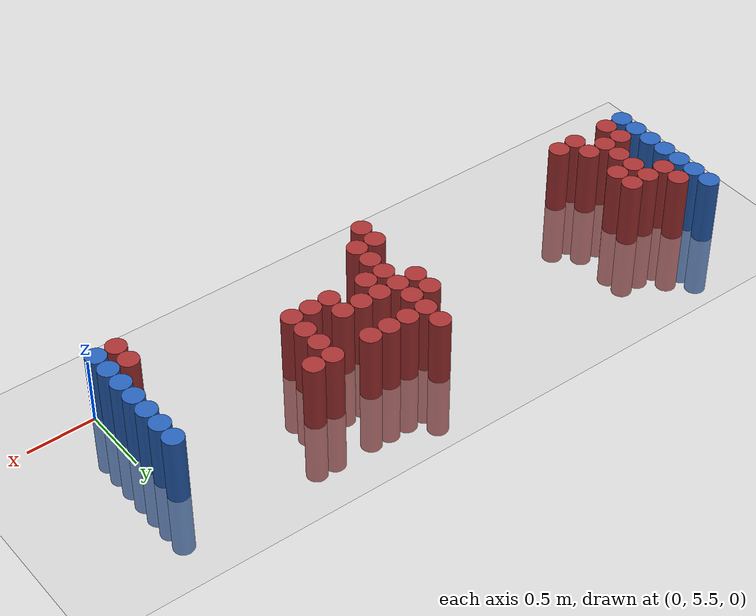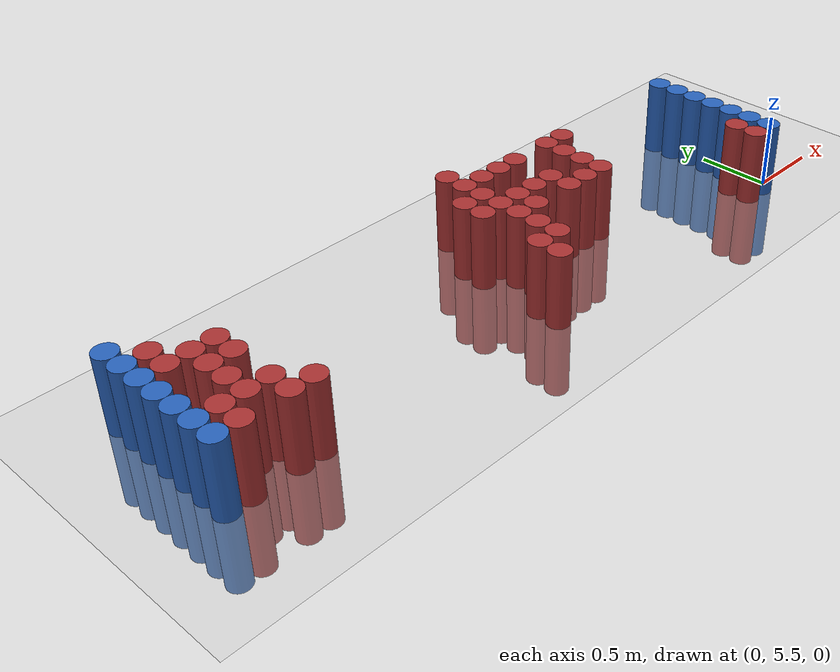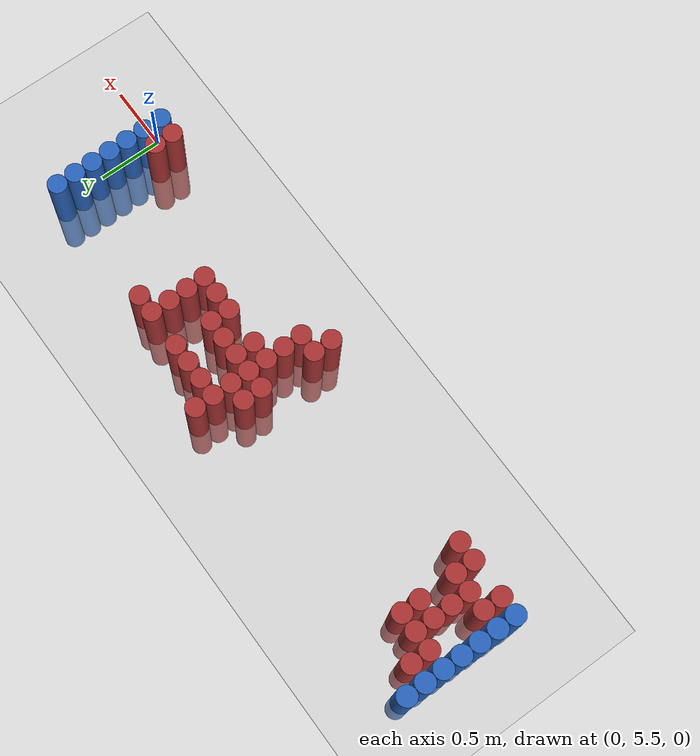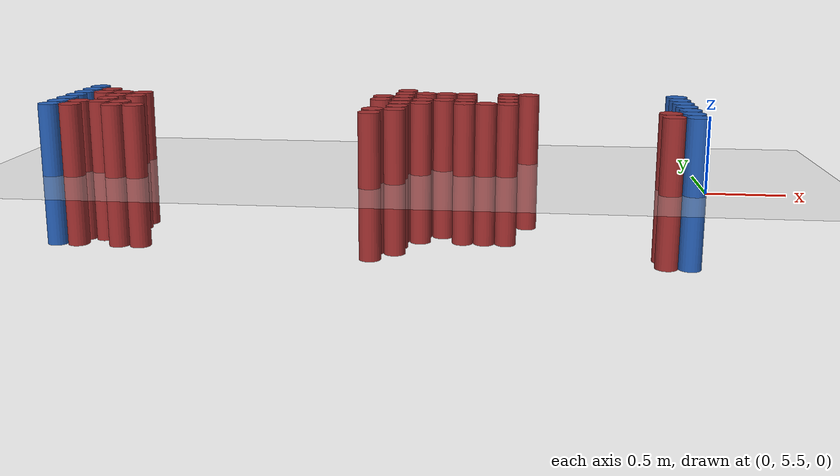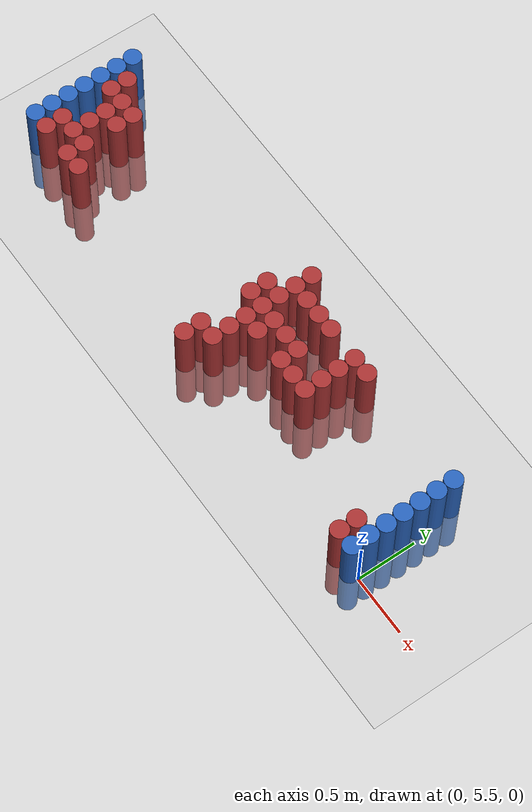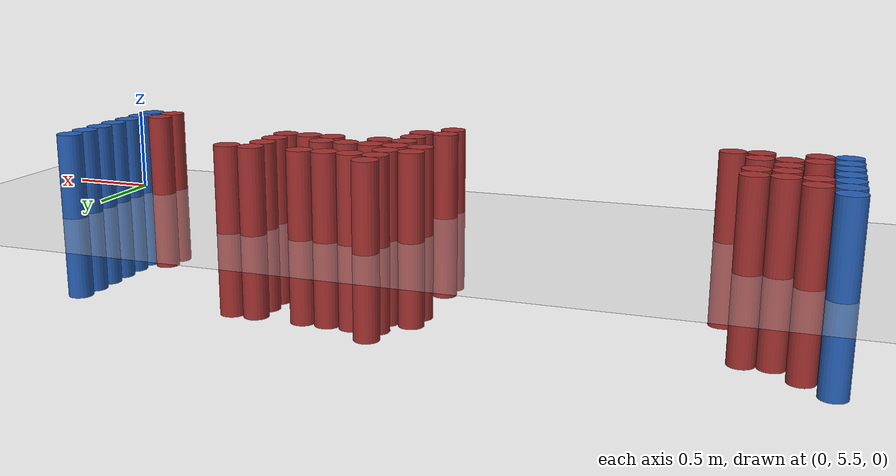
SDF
<sdf version="1.6">
 <world name="default">
  <model name="ground_plane">
   <static>1</static>
   <link name="link">
    <collision name="collision">
     <geometry><plane><normal>0 0 1</normal><size>100 100</size></plane></geometry>
     <surface><friction><ode><mu>100</mu><mu2>50</mu2></ode></friction></surface>
    </collision>
    <visual name="visual">
     <cast_shadows>0</cast_shadows>
     <geometry><plane><normal>0 0 1</normal><size>100 100</size></plane></geometry>
     <material>
      <script><uri>file://media/materials/scripts/gazebo.material</uri><name>Gazebo/Grey</name></script>
     </material>
    </visual>
   </link>
  </model>
  <model name="unit_cylinder_99">
   <static>1</static>
   <pose>-4.425000 5.625000 0.000000 0.000000 0.000000 0.000000</pose>
   <link name="link">
    <inertial>
     <mass>1</mass>
     <inertia><ixx>0.145833</ixx><ixy>0</ixy><ixz>0</ixz><iyy>0.145833</iyy><iyz>0</iyz><izz>0.125</izz></inertia>
    </inertial>
    <collision name="collision">
     <geometry><cylinder><radius>0.075000</radius><length>1</length></cylinder></geometry>
    </collision>
    <visual name="visual">
     <geometry><cylinder><radius>0.075000</radius><length>1</length></cylinder></geometry>
     <material>
      <ambient>0.152000 0.379000 0.720000 1</ambient>
      <diffuse>0.152000 0.379000 0.720000 1</diffuse>
     </material>
     <material>
      <script><name>Gazebo/Grey</name><uri>file://media/materials/scripts/gazebo.material</uri></script>
     </material>
    </visual>
   </link>
  </model>
  <model name="unit_cylinder_100">
   <static>1</static>
   <pose>-4.425000 5.775000 0.000000 0.000000 0.000000 0.000000</pose>
   <link name="link">
    <inertial>
     <mass>1</mass>
     <inertia><ixx>0.145833</ixx><ixy>0</ixy><ixz>0</ixz><iyy>0.145833</iyy><iyz>0</iyz><izz>0.125</izz></inertia>
    </inertial>
    <collision name="collision">
     <geometry><cylinder><radius>0.075000</radius><length>1</length></cylinder></geometry>
    </collision>
    <visual name="visual">
     <geometry><cylinder><radius>0.075000</radius><length>1</length></cylinder></geometry>
     <material>
      <ambient>0.152000 0.379000 0.720000 1</ambient>
      <diffuse>0.152000 0.379000 0.720000 1</diffuse>
     </material>
     <material>
      <script><name>Gazebo/Grey</name><uri>file://media/materials/scripts/gazebo.material</uri></script>
     </material>
    </visual>
   </link>
  </model>
  <model name="unit_cylinder_101">
   <static>1</static>
   <pose>-4.425000 5.925000 0.000000 0.000000 0.000000 0.000000</pose>
   <link name="link">
    <inertial>
     <mass>1</mass>
     <inertia><ixx>0.145833</ixx><ixy>0</ixy><ixz>0</ixz><iyy>0.145833</iyy><iyz>0</iyz><izz>0.125</izz></inertia>
    </inertial>
    <collision name="collision">
     <geometry><cylinder><radius>0.075000</radius><length>1</length></cylinder></geometry>
    </collision>
    <visual name="visual">
     <geometry><cylinder><radius>0.075000</radius><length>1</length></cylinder></geometry>
     <material>
      <ambient>0.152000 0.379000 0.720000 1</ambient>
      <diffuse>0.152000 0.379000 0.720000 1</diffuse>
     </material>
     <material>
      <script><name>Gazebo/Grey</name><uri>file://media/materials/scripts/gazebo.material</uri></script>
     </material>
    </visual>
   </link>
  </model>
  <model name="unit_cylinder_102">
   <static>1</static>
   <pose>-4.425000 6.075000 0.000000 0.000000 0.000000 0.000000</pose>
   <link name="link">
    <inertial>
     <mass>1</mass>
     <inertia><ixx>0.145833</ixx><ixy>0</ixy><ixz>0</ixz><iyy>0.145833</iyy><iyz>0</iyz><izz>0.125</izz></inertia>
    </inertial>
    <collision name="collision">
     <geometry><cylinder><radius>0.075000</radius><length>1</length></cylinder></geometry>
    </collision>
    <visual name="visual">
     <geometry><cylinder><radius>0.075000</radius><length>1</length></cylinder></geometry>
     <material>
      <ambient>0.152000 0.379000 0.720000 1</ambient>
      <diffuse>0.152000 0.379000 0.720000 1</diffuse>
     </material>
     <material>
      <script><name>Gazebo/Grey</name><uri>file://media/materials/scripts/gazebo.material</uri></script>
     </material>
    </visual>
   </link>
  </model>
  <model name="unit_cylinder_103">
   <static>1</static>
   <pose>-4.425000 6.225000 0.000000 0.000000 0.000000 0.000000</pose>
   <link name="link">
    <inertial>
     <mass>1</mass>
     <inertia><ixx>0.145833</ixx><ixy>0</ixy><ixz>0</ixz><iyy>0.145833</iyy><iyz>0</iyz><izz>0.125</izz></inertia>
    </inertial>
    <collision name="collision">
     <geometry><cylinder><radius>0.075000</radius><length>1</length></cylinder></geometry>
    </collision>
    <visual name="visual">
     <geometry><cylinder><radius>0.075000</radius><length>1</length></cylinder></geometry>
     <material>
      <ambient>0.152000 0.379000 0.720000 1</ambient>
      <diffuse>0.152000 0.379000 0.720000 1</diffuse>
     </material>
     <material>
      <script><name>Gazebo/Grey</name><uri>file://media/materials/scripts/gazebo.material</uri></script>
     </material>
    </visual>
   </link>
  </model>
  <model name="unit_cylinder_104">
   <static>1</static>
   <pose>-4.425000 6.375000 0.000000 0.000000 0.000000 0.000000</pose>
   <link name="link">
    <inertial>
     <mass>1</mass>
     <inertia><ixx>0.145833</ixx><ixy>0</ixy><ixz>0</ixz><iyy>0.145833</iyy><iyz>0</iyz><izz>0.125</izz></inertia>
    </inertial>
    <collision name="collision">
     <geometry><cylinder><radius>0.075000</radius><length>1</length></cylinder></geometry>
    </collision>
    <visual name="visual">
     <geometry><cylinder><radius>0.075000</radius><length>1</length></cylinder></geometry>
     <material>
      <ambient>0.152000 0.379000 0.720000 1</ambient>
      <diffuse>0.152000 0.379000 0.720000 1</diffuse>
     </material>
     <material>
      <script><name>Gazebo/Grey</name><uri>file://media/materials/scripts/gazebo.material</uri></script>
     </material>
    </visual>
   </link>
  </model>
  <model name="unit_cylinder_105">
   <static>1</static>
   <pose>-4.425000 6.525000 0.000000 0.000000 0.000000 0.000000</pose>
   <link name="link">
    <inertial>
     <mass>1</mass>
     <inertia><ixx>0.145833</ixx><ixy>0</ixy><ixz>0</ixz><iyy>0.145833</iyy><iyz>0</iyz><izz>0.125</izz></inertia>
    </inertial>
    <collision name="collision">
     <geometry><cylinder><radius>0.075000</radius><length>1</length></cylinder></geometry>
    </collision>
    <visual name="visual">
     <geometry><cylinder><radius>0.075000</radius><length>1</length></cylinder></geometry>
     <material>
      <ambient>0.152000 0.379000 0.720000 1</ambient>
      <diffuse>0.152000 0.379000 0.720000 1</diffuse>
     </material>
     <material>
      <script><name>Gazebo/Grey</name><uri>file://media/materials/scripts/gazebo.material</uri></script>
     </material>
    </visual>
   </link>
  </model>
  <model name="unit_cylinder_129">
   <static>1</static>
   <pose>-4.275000 5.625000 0.000000 0.000000 0.000000 0.000000</pose>
   <link name="link">
    <inertial>
     <mass>1</mass>
     <inertia><ixx>0.145833</ixx><ixy>0</ixy><ixz>0</ixz><iyy>0.145833</iyy><iyz>0</iyz><izz>0.125</izz></inertia>
    </inertial>
    <collision name="collision">
     <geometry><cylinder><radius>0.075000</radius><length>1</length></cylinder></geometry>
    </collision>
    <visual name="visual">
     <geometry><cylinder><radius>0.075000</radius><length>1</length></cylinder></geometry>
     <material>
      <ambient>0.648000 0.192000 0.192000 1</ambient>
      <diffuse>0.648000 0.192000 0.192000 1</diffuse>
     </material>
     <material>
      <script><name>Gazebo/Grey</name><uri>file://media/materials/scripts/gazebo.material</uri></script>
     </material>
    </visual>
   </link>
  </model>
  <model name="unit_cylinder_130">
   <static>1</static>
   <pose>-4.275000 5.775000 0.000000 0.000000 0.000000 0.000000</pose>
   <link name="link">
    <inertial>
     <mass>1</mass>
     <inertia><ixx>0.145833</ixx><ixy>0</ixy><ixz>0</ixz><iyy>0.145833</iyy><iyz>0</iyz><izz>0.125</izz></inertia>
    </inertial>
    <collision name="collision">
     <geometry><cylinder><radius>0.075000</radius><length>1</length></cylinder></geometry>
    </collision>
    <visual name="visual">
     <geometry><cylinder><radius>0.075000</radius><length>1</length></cylinder></geometry>
     <material>
      <ambient>0.648000 0.192000 0.192000 1</ambient>
      <diffuse>0.648000 0.192000 0.192000 1</diffuse>
     </material>
     <material>
      <script><name>Gazebo/Grey</name><uri>file://media/materials/scripts/gazebo.material</uri></script>
     </material>
    </visual>
   </link>
  </model>
  <model name="unit_cylinder_131">
   <static>1</static>
   <pose>-4.275000 6.225000 0.000000 0.000000 0.000000 0.000000</pose>
   <link name="link">
    <inertial>
     <mass>1</mass>
     <inertia><ixx>0.145833</ixx><ixy>0</ixy><ixz>0</ixz><iyy>0.145833</iyy><iyz>0</iyz><izz>0.125</izz></inertia>
    </inertial>
    <collision name="collision">
     <geometry><cylinder><radius>0.075000</radius><length>1</length></cylinder></geometry>
    </collision>
    <visual name="visual">
     <geometry><cylinder><radius>0.075000</radius><length>1</length></cylinder></geometry>
     <material>
      <ambient>0.648000 0.192000 0.192000 1</ambient>
      <diffuse>0.648000 0.192000 0.192000 1</diffuse>
     </material>
     <material>
      <script><name>Gazebo/Grey</name><uri>file://media/materials/scripts/gazebo.material</uri></script>
     </material>
    </visual>
   </link>
  </model>
  <model name="unit_cylinder_132">
   <static>1</static>
   <pose>-4.275000 6.375000 0.000000 0.000000 0.000000 0.000000</pose>
   <link name="link">
    <inertial>
     <mass>1</mass>
     <inertia><ixx>0.145833</ixx><ixy>0</ixy><ixz>0</ixz><iyy>0.145833</iyy><iyz>0</iyz><izz>0.125</izz></inertia>
    </inertial>
    <collision name="collision">
     <geometry><cylinder><radius>0.075000</radius><length>1</length></cylinder></geometry>
    </collision>
    <visual name="visual">
     <geometry><cylinder><radius>0.075000</radius><length>1</length></cylinder></geometry>
     <material>
      <ambient>0.648000 0.192000 0.192000 1</ambient>
      <diffuse>0.648000 0.192000 0.192000 1</diffuse>
     </material>
     <material>
      <script><name>Gazebo/Grey</name><uri>file://media/materials/scripts/gazebo.material</uri></script>
     </material>
    </visual>
   </link>
  </model>
  <model name="unit_cylinder_143">
   <static>1</static>
   <pose>-4.125000 5.775000 0.000000 0.000000 0.000000 0.000000</pose>
   <link name="link">
    <inertial>
     <mass>1</mass>
     <inertia><ixx>0.145833</ixx><ixy>0</ixy><ixz>0</ixz><iyy>0.145833</iyy><iyz>0</iyz><izz>0.125</izz></inertia>
    </inertial>
    <collision name="collision">
     <geometry><cylinder><radius>0.075000</radius><length>1</length></cylinder></geometry>
    </collision>
    <visual name="visual">
     <geometry><cylinder><radius>0.075000</radius><length>1</length></cylinder></geometry>
     <material>
      <ambient>0.648000 0.192000 0.192000 1</ambient>
      <diffuse>0.648000 0.192000 0.192000 1</diffuse>
     </material>
     <material>
      <script><name>Gazebo/Grey</name><uri>file://media/materials/scripts/gazebo.material</uri></script>
     </material>
    </visual>
   </link>
  </model>
  <model name="unit_cylinder_144">
   <static>1</static>
   <pose>-4.125000 5.925000 0.000000 0.000000 0.000000 0.000000</pose>
   <link name="link">
    <inertial>
     <mass>1</mass>
     <inertia><ixx>0.145833</ixx><ixy>0</ixy><ixz>0</ixz><iyy>0.145833</iyy><iyz>0</iyz><izz>0.125</izz></inertia>
    </inertial>
    <collision name="collision">
     <geometry><cylinder><radius>0.075000</radius><length>1</length></cylinder></geometry>
    </collision>
    <visual name="visual">
     <geometry><cylinder><radius>0.075000</radius><length>1</length></cylinder></geometry>
     <material>
      <ambient>0.648000 0.192000 0.192000 1</ambient>
      <diffuse>0.648000 0.192000 0.192000 1</diffuse>
     </material>
     <material>
      <script><name>Gazebo/Grey</name><uri>file://media/materials/scripts/gazebo.material</uri></script>
     </material>
    </visual>
   </link>
  </model>
  <model name="unit_cylinder_145">
   <static>1</static>
   <pose>-4.125000 6.075000 0.000000 0.000000 0.000000 0.000000</pose>
   <link name="link">
    <inertial>
     <mass>1</mass>
     <inertia><ixx>0.145833</ixx><ixy>0</ixy><ixz>0</ixz><iyy>0.145833</iyy><iyz>0</iyz><izz>0.125</izz></inertia>
    </inertial>
    <collision name="collision">
     <geometry><cylinder><radius>0.075000</radius><length>1</length></cylinder></geometry>
    </collision>
    <visual name="visual">
     <geometry><cylinder><radius>0.075000</radius><length>1</length></cylinder></geometry>
     <material>
      <ambient>0.648000 0.192000 0.192000 1</ambient>
      <diffuse>0.648000 0.192000 0.192000 1</diffuse>
     </material>
     <material>
      <script><name>Gazebo/Grey</name><uri>file://media/materials/scripts/gazebo.material</uri></script>
     </material>
    </visual>
   </link>
  </model>
  <model name="unit_cylinder_146">
   <static>1</static>
   <pose>-4.125000 6.225000 0.000000 0.000000 0.000000 0.000000</pose>
   <link name="link">
    <inertial>
     <mass>1</mass>
     <inertia><ixx>0.145833</ixx><ixy>0</ixy><ixz>0</ixz><iyy>0.145833</iyy><iyz>0</iyz><izz>0.125</izz></inertia>
    </inertial>
    <collision name="collision">
     <geometry><cylinder><radius>0.075000</radius><length>1</length></cylinder></geometry>
    </collision>
    <visual name="visual">
     <geometry><cylinder><radius>0.075000</radius><length>1</length></cylinder></geometry>
     <material>
      <ambient>0.648000 0.192000 0.192000 1</ambient>
      <diffuse>0.648000 0.192000 0.192000 1</diffuse>
     </material>
     <material>
      <script><name>Gazebo/Grey</name><uri>file://media/materials/scripts/gazebo.material</uri></script>
     </material>
    </visual>
   </link>
  </model>
  <model name="unit_cylinder_151">
   <static>1</static>
   <pose>-3.975000 5.625000 0.000000 0.000000 0.000000 0.000000</pose>
   <link name="link">
    <inertial>
     <mass>1</mass>
     <inertia><ixx>0.145833</ixx><ixy>0</ixy><ixz>0</ixz><iyy>0.145833</iyy><iyz>0</iyz><izz>0.125</izz></inertia>
    </inertial>
    <collision name="collision">
     <geometry><cylinder><radius>0.075000</radius><length>1</length></cylinder></geometry>
    </collision>
    <visual name="visual">
     <geometry><cylinder><radius>0.075000</radius><length>1</length></cylinder></geometry>
     <material>
      <ambient>0.648000 0.192000 0.192000 1</ambient>
      <diffuse>0.648000 0.192000 0.192000 1</diffuse>
     </material>
     <material>
      <script><name>Gazebo/Grey</name><uri>file://media/materials/scripts/gazebo.material</uri></script>
     </material>
    </visual>
   </link>
  </model>
  <model name="unit_cylinder_152">
   <static>1</static>
   <pose>-3.975000 5.775000 0.000000 0.000000 0.000000 0.000000</pose>
   <link name="link">
    <inertial>
     <mass>1</mass>
     <inertia><ixx>0.145833</ixx><ixy>0</ixy><ixz>0</ixz><iyy>0.145833</iyy><iyz>0</iyz><izz>0.125</izz></inertia>
    </inertial>
    <collision name="collision">
     <geometry><cylinder><radius>0.075000</radius><length>1</length></cylinder></geometry>
    </collision>
    <visual name="visual">
     <geometry><cylinder><radius>0.075000</radius><length>1</length></cylinder></geometry>
     <material>
      <ambient>0.648000 0.192000 0.192000 1</ambient>
      <diffuse>0.648000 0.192000 0.192000 1</diffuse>
     </material>
     <material>
      <script><name>Gazebo/Grey</name><uri>file://media/materials/scripts/gazebo.material</uri></script>
     </material>
    </visual>
   </link>
  </model>
  <model name="unit_cylinder_153">
   <static>1</static>
   <pose>-3.975000 6.075000 0.000000 0.000000 0.000000 0.000000</pose>
   <link name="link">
    <inertial>
     <mass>1</mass>
     <inertia><ixx>0.145833</ixx><ixy>0</ixy><ixz>0</ixz><iyy>0.145833</iyy><iyz>0</iyz><izz>0.125</izz></inertia>
    </inertial>
    <collision name="collision">
     <geometry><cylinder><radius>0.075000</radius><length>1</length></cylinder></geometry>
    </collision>
    <visual name="visual">
     <geometry><cylinder><radius>0.075000</radius><length>1</length></cylinder></geometry>
     <material>
      <ambient>0.648000 0.192000 0.192000 1</ambient>
      <diffuse>0.648000 0.192000 0.192000 1</diffuse>
     </material>
     <material>
      <script><name>Gazebo/Grey</name><uri>file://media/materials/scripts/gazebo.material</uri></script>
     </material>
    </visual>
   </link>
  </model>
  <model name="unit_cylinder_154">
   <static>1</static>
   <pose>-3.975000 6.225000 0.000000 0.000000 0.000000 0.000000</pose>
   <link name="link">
    <inertial>
     <mass>1</mass>
     <inertia><ixx>0.145833</ixx><ixy>0</ixy><ixz>0</ixz><iyy>0.145833</iyy><iyz>0</iyz><izz>0.125</izz></inertia>
    </inertial>
    <collision name="collision">
     <geometry><cylinder><radius>0.075000</radius><length>1</length></cylinder></geometry>
    </collision>
    <visual name="visual">
     <geometry><cylinder><radius>0.075000</radius><length>1</length></cylinder></geometry>
     <material>
      <ambient>0.648000 0.192000 0.192000 1</ambient>
      <diffuse>0.648000 0.192000 0.192000 1</diffuse>
     </material>
     <material>
      <script><name>Gazebo/Grey</name><uri>file://media/materials/scripts/gazebo.material</uri></script>
     </material>
    </visual>
   </link>
  </model>
  <model name="unit_cylinder_158">
   <static>1</static>
   <pose>-3.825000 5.625000 0.000000 0.000000 0.000000 0.000000</pose>
   <link name="link">
    <inertial>
     <mass>1</mass>
     <inertia><ixx>0.145833</ixx><ixy>0</ixy><ixz>0</ixz><iyy>0.145833</iyy><iyz>0</iyz><izz>0.125</izz></inertia>
    </inertial>
    <collision name="collision">
     <geometry><cylinder><radius>0.075000</radius><length>1</length></cylinder></geometry>
    </collision>
    <visual name="visual">
     <geometry><cylinder><radius>0.075000</radius><length>1</length></cylinder></geometry>
     <material>
      <ambient>0.648000 0.192000 0.192000 1</ambient>
      <diffuse>0.648000 0.192000 0.192000 1</diffuse>
     </material>
     <material>
      <script><name>Gazebo/Grey</name><uri>file://media/materials/scripts/gazebo.material</uri></script>
     </material>
    </visual>
   </link>
  </model>
  <model name="unit_cylinder_176">
   <static>1</static>
   <pose>-2.175000 5.475000 0.000000 0.000000 0.000000 0.000000</pose>
   <link name="link">
    <inertial>
     <mass>1</mass>
     <inertia><ixx>0.145833</ixx><ixy>0</ixy><ixz>0</ixz><iyy>0.145833</iyy><iyz>0</iyz><izz>0.125</izz></inertia>
    </inertial>
    <collision name="collision">
     <geometry><cylinder><radius>0.075000</radius><length>1</length></cylinder></geometry>
    </collision>
    <visual name="visual">
     <geometry><cylinder><radius>0.075000</radius><length>1</length></cylinder></geometry>
     <material>
      <ambient>0.648000 0.192000 0.192000 1</ambient>
      <diffuse>0.648000 0.192000 0.192000 1</diffuse>
     </material>
     <material>
      <script><name>Gazebo/Grey</name><uri>file://media/materials/scripts/gazebo.material</uri></script>
     </material>
    </visual>
   </link>
  </model>
  <model name="unit_cylinder_177">
   <static>1</static>
   <pose>-2.175000 5.625000 0.000000 0.000000 0.000000 0.000000</pose>
   <link name="link">
    <inertial>
     <mass>1</mass>
     <inertia><ixx>0.145833</ixx><ixy>0</ixy><ixz>0</ixz><iyy>0.145833</iyy><iyz>0</iyz><izz>0.125</izz></inertia>
    </inertial>
    <collision name="collision">
     <geometry><cylinder><radius>0.075000</radius><length>1</length></cylinder></geometry>
    </collision>
    <visual name="visual">
     <geometry><cylinder><radius>0.075000</radius><length>1</length></cylinder></geometry>
     <material>
      <ambient>0.648000 0.192000 0.192000 1</ambient>
      <diffuse>0.648000 0.192000 0.192000 1</diffuse>
     </material>
     <material>
      <script><name>Gazebo/Grey</name><uri>file://media/materials/scripts/gazebo.material</uri></script>
     </material>
    </visual>
   </link>
  </model>
  <model name="unit_cylinder_178">
   <static>1</static>
   <pose>-2.175000 6.075000 0.000000 0.000000 0.000000 0.000000</pose>
   <link name="link">
    <inertial>
     <mass>1</mass>
     <inertia><ixx>0.145833</ixx><ixy>0</ixy><ixz>0</ixz><iyy>0.145833</iyy><iyz>0</iyz><izz>0.125</izz></inertia>
    </inertial>
    <collision name="collision">
     <geometry><cylinder><radius>0.075000</radius><length>1</length></cylinder></geometry>
    </collision>
    <visual name="visual">
     <geometry><cylinder><radius>0.075000</radius><length>1</length></cylinder></geometry>
     <material>
      <ambient>0.648000 0.192000 0.192000 1</ambient>
      <diffuse>0.648000 0.192000 0.192000 1</diffuse>
     </material>
     <material>
      <script><name>Gazebo/Grey</name><uri>file://media/materials/scripts/gazebo.material</uri></script>
     </material>
    </visual>
   </link>
  </model>
  <model name="unit_cylinder_179">
   <static>1</static>
   <pose>-2.175000 6.225000 0.000000 0.000000 0.000000 0.000000</pose>
   <link name="link">
    <inertial>
     <mass>1</mass>
     <inertia><ixx>0.145833</ixx><ixy>0</ixy><ixz>0</ixz><iyy>0.145833</iyy><iyz>0</iyz><izz>0.125</izz></inertia>
    </inertial>
    <collision name="collision">
     <geometry><cylinder><radius>0.075000</radius><length>1</length></cylinder></geometry>
    </collision>
    <visual name="visual">
     <geometry><cylinder><radius>0.075000</radius><length>1</length></cylinder></geometry>
     <material>
      <ambient>0.648000 0.192000 0.192000 1</ambient>
      <diffuse>0.648000 0.192000 0.192000 1</diffuse>
     </material>
     <material>
      <script><name>Gazebo/Grey</name><uri>file://media/materials/scripts/gazebo.material</uri></script>
     </material>
    </visual>
   </link>
  </model>
  <model name="unit_cylinder_186">
   <static>1</static>
   <pose>-2.025000 5.625000 0.000000 0.000000 0.000000 0.000000</pose>
   <link name="link">
    <inertial>
     <mass>1</mass>
     <inertia><ixx>0.145833</ixx><ixy>0</ixy><ixz>0</ixz><iyy>0.145833</iyy><iyz>0</iyz><izz>0.125</izz></inertia>
    </inertial>
    <collision name="collision">
     <geometry><cylinder><radius>0.075000</radius><length>1</length></cylinder></geometry>
    </collision>
    <visual name="visual">
     <geometry><cylinder><radius>0.075000</radius><length>1</length></cylinder></geometry>
     <material>
      <ambient>0.648000 0.192000 0.192000 1</ambient>
      <diffuse>0.648000 0.192000 0.192000 1</diffuse>
     </material>
     <material>
      <script><name>Gazebo/Grey</name><uri>file://media/materials/scripts/gazebo.material</uri></script>
     </material>
    </visual>
   </link>
  </model>
  <model name="unit_cylinder_187">
   <static>1</static>
   <pose>-2.025000 5.775000 0.000000 0.000000 0.000000 0.000000</pose>
   <link name="link">
    <inertial>
     <mass>1</mass>
     <inertia><ixx>0.145833</ixx><ixy>0</ixy><ixz>0</ixz><iyy>0.145833</iyy><iyz>0</iyz><izz>0.125</izz></inertia>
    </inertial>
    <collision name="collision">
     <geometry><cylinder><radius>0.075000</radius><length>1</length></cylinder></geometry>
    </collision>
    <visual name="visual">
     <geometry><cylinder><radius>0.075000</radius><length>1</length></cylinder></geometry>
     <material>
      <ambient>0.648000 0.192000 0.192000 1</ambient>
      <diffuse>0.648000 0.192000 0.192000 1</diffuse>
     </material>
     <material>
      <script><name>Gazebo/Grey</name><uri>file://media/materials/scripts/gazebo.material</uri></script>
     </material>
    </visual>
   </link>
  </model>
  <model name="unit_cylinder_188">
   <static>1</static>
   <pose>-2.025000 5.925000 0.000000 0.000000 0.000000 0.000000</pose>
   <link name="link">
    <inertial>
     <mass>1</mass>
     <inertia><ixx>0.145833</ixx><ixy>0</ixy><ixz>0</ixz><iyy>0.145833</iyy><iyz>0</iyz><izz>0.125</izz></inertia>
    </inertial>
    <collision name="collision">
     <geometry><cylinder><radius>0.075000</radius><length>1</length></cylinder></geometry>
    </collision>
    <visual name="visual">
     <geometry><cylinder><radius>0.075000</radius><length>1</length></cylinder></geometry>
     <material>
      <ambient>0.648000 0.192000 0.192000 1</ambient>
      <diffuse>0.648000 0.192000 0.192000 1</diffuse>
     </material>
     <material>
      <script><name>Gazebo/Grey</name><uri>file://media/materials/scripts/gazebo.material</uri></script>
     </material>
    </visual>
   </link>
  </model>
  <model name="unit_cylinder_189">
   <static>1</static>
   <pose>-2.025000 6.075000 0.000000 0.000000 0.000000 0.000000</pose>
   <link name="link">
    <inertial>
     <mass>1</mass>
     <inertia><ixx>0.145833</ixx><ixy>0</ixy><ixz>0</ixz><iyy>0.145833</iyy><iyz>0</iyz><izz>0.125</izz></inertia>
    </inertial>
    <collision name="collision">
     <geometry><cylinder><radius>0.075000</radius><length>1</length></cylinder></geometry>
    </collision>
    <visual name="visual">
     <geometry><cylinder><radius>0.075000</radius><length>1</length></cylinder></geometry>
     <material>
      <ambient>0.648000 0.192000 0.192000 1</ambient>
      <diffuse>0.648000 0.192000 0.192000 1</diffuse>
     </material>
     <material>
      <script><name>Gazebo/Grey</name><uri>file://media/materials/scripts/gazebo.material</uri></script>
     </material>
    </visual>
   </link>
  </model>
  <model name="unit_cylinder_190">
   <static>1</static>
   <pose>-2.025000 6.225000 0.000000 0.000000 0.000000 0.000000</pose>
   <link name="link">
    <inertial>
     <mass>1</mass>
     <inertia><ixx>0.145833</ixx><ixy>0</ixy><ixz>0</ixz><iyy>0.145833</iyy><iyz>0</iyz><izz>0.125</izz></inertia>
    </inertial>
    <collision name="collision">
     <geometry><cylinder><radius>0.075000</radius><length>1</length></cylinder></geometry>
    </collision>
    <visual name="visual">
     <geometry><cylinder><radius>0.075000</radius><length>1</length></cylinder></geometry>
     <material>
      <ambient>0.648000 0.192000 0.192000 1</ambient>
      <diffuse>0.648000 0.192000 0.192000 1</diffuse>
     </material>
     <material>
      <script><name>Gazebo/Grey</name><uri>file://media/materials/scripts/gazebo.material</uri></script>
     </material>
    </visual>
   </link>
  </model>
  <model name="unit_cylinder_191">
   <static>1</static>
   <pose>-2.025000 6.375000 0.000000 0.000000 0.000000 0.000000</pose>
   <link name="link">
    <inertial>
     <mass>1</mass>
     <inertia><ixx>0.145833</ixx><ixy>0</ixy><ixz>0</ixz><iyy>0.145833</iyy><iyz>0</iyz><izz>0.125</izz></inertia>
    </inertial>
    <collision name="collision">
     <geometry><cylinder><radius>0.075000</radius><length>1</length></cylinder></geometry>
    </collision>
    <visual name="visual">
     <geometry><cylinder><radius>0.075000</radius><length>1</length></cylinder></geometry>
     <material>
      <ambient>0.648000 0.192000 0.192000 1</ambient>
      <diffuse>0.648000 0.192000 0.192000 1</diffuse>
     </material>
     <material>
      <script><name>Gazebo/Grey</name><uri>file://media/materials/scripts/gazebo.material</uri></script>
     </material>
    </visual>
   </link>
  </model>
  <model name="unit_cylinder_192">
   <static>1</static>
   <pose>-2.025000 6.525000 0.000000 0.000000 0.000000 0.000000</pose>
   <link name="link">
    <inertial>
     <mass>1</mass>
     <inertia><ixx>0.145833</ixx><ixy>0</ixy><ixz>0</ixz><iyy>0.145833</iyy><iyz>0</iyz><izz>0.125</izz></inertia>
    </inertial>
    <collision name="collision">
     <geometry><cylinder><radius>0.075000</radius><length>1</length></cylinder></geometry>
    </collision>
    <visual name="visual">
     <geometry><cylinder><radius>0.075000</radius><length>1</length></cylinder></geometry>
     <material>
      <ambient>0.648000 0.192000 0.192000 1</ambient>
      <diffuse>0.648000 0.192000 0.192000 1</diffuse>
     </material>
     <material>
      <script><name>Gazebo/Grey</name><uri>file://media/materials/scripts/gazebo.material</uri></script>
     </material>
    </visual>
   </link>
  </model>
  <model name="unit_cylinder_199">
   <static>1</static>
   <pose>-1.875000 5.925000 0.000000 0.000000 0.000000 0.000000</pose>
   <link name="link">
    <inertial>
     <mass>1</mass>
     <inertia><ixx>0.145833</ixx><ixy>0</ixy><ixz>0</ixz><iyy>0.145833</iyy><iyz>0</iyz><izz>0.125</izz></inertia>
    </inertial>
    <collision name="collision">
     <geometry><cylinder><radius>0.075000</radius><length>1</length></cylinder></geometry>
    </collision>
    <visual name="visual">
     <geometry><cylinder><radius>0.075000</radius><length>1</length></cylinder></geometry>
     <material>
      <ambient>0.648000 0.192000 0.192000 1</ambient>
      <diffuse>0.648000 0.192000 0.192000 1</diffuse>
     </material>
     <material>
      <script><name>Gazebo/Grey</name><uri>file://media/materials/scripts/gazebo.material</uri></script>
     </material>
    </visual>
   </link>
  </model>
  <model name="unit_cylinder_200">
   <static>1</static>
   <pose>-1.875000 6.075000 0.000000 0.000000 0.000000 0.000000</pose>
   <link name="link">
    <inertial>
     <mass>1</mass>
     <inertia><ixx>0.145833</ixx><ixy>0</ixy><ixz>0</ixz><iyy>0.145833</iyy><iyz>0</iyz><izz>0.125</izz></inertia>
    </inertial>
    <collision name="collision">
     <geometry><cylinder><radius>0.075000</radius><length>1</length></cylinder></geometry>
    </collision>
    <visual name="visual">
     <geometry><cylinder><radius>0.075000</radius><length>1</length></cylinder></geometry>
     <material>
      <ambient>0.648000 0.192000 0.192000 1</ambient>
      <diffuse>0.648000 0.192000 0.192000 1</diffuse>
     </material>
     <material>
      <script><name>Gazebo/Grey</name><uri>file://media/materials/scripts/gazebo.material</uri></script>
     </material>
    </visual>
   </link>
  </model>
  <model name="unit_cylinder_201">
   <static>1</static>
   <pose>-1.875000 6.375000 0.000000 0.000000 0.000000 0.000000</pose>
   <link name="link">
    <inertial>
     <mass>1</mass>
     <inertia><ixx>0.145833</ixx><ixy>0</ixy><ixz>0</ixz><iyy>0.145833</iyy><iyz>0</iyz><izz>0.125</izz></inertia>
    </inertial>
    <collision name="collision">
     <geometry><cylinder><radius>0.075000</radius><length>1</length></cylinder></geometry>
    </collision>
    <visual name="visual">
     <geometry><cylinder><radius>0.075000</radius><length>1</length></cylinder></geometry>
     <material>
      <ambient>0.648000 0.192000 0.192000 1</ambient>
      <diffuse>0.648000 0.192000 0.192000 1</diffuse>
     </material>
     <material>
      <script><name>Gazebo/Grey</name><uri>file://media/materials/scripts/gazebo.material</uri></script>
     </material>
    </visual>
   </link>
  </model>
  <model name="unit_cylinder_204">
   <static>1</static>
   <pose>-1.725000 6.075000 0.000000 0.000000 0.000000 0.000000</pose>
   <link name="link">
    <inertial>
     <mass>1</mass>
     <inertia><ixx>0.145833</ixx><ixy>0</ixy><ixz>0</ixz><iyy>0.145833</iyy><iyz>0</iyz><izz>0.125</izz></inertia>
    </inertial>
    <collision name="collision">
     <geometry><cylinder><radius>0.075000</radius><length>1</length></cylinder></geometry>
    </collision>
    <visual name="visual">
     <geometry><cylinder><radius>0.075000</radius><length>1</length></cylinder></geometry>
     <material>
      <ambient>0.648000 0.192000 0.192000 1</ambient>
      <diffuse>0.648000 0.192000 0.192000 1</diffuse>
     </material>
     <material>
      <script><name>Gazebo/Grey</name><uri>file://media/materials/scripts/gazebo.material</uri></script>
     </material>
    </visual>
   </link>
  </model>
  <model name="unit_cylinder_205">
   <static>1</static>
   <pose>-1.725000 6.375000 0.000000 0.000000 0.000000 0.000000</pose>
   <link name="link">
    <inertial>
     <mass>1</mass>
     <inertia><ixx>0.145833</ixx><ixy>0</ixy><ixz>0</ixz><iyy>0.145833</iyy><iyz>0</iyz><izz>0.125</izz></inertia>
    </inertial>
    <collision name="collision">
     <geometry><cylinder><radius>0.075000</radius><length>1</length></cylinder></geometry>
    </collision>
    <visual name="visual">
     <geometry><cylinder><radius>0.075000</radius><length>1</length></cylinder></geometry>
     <material>
      <ambient>0.648000 0.192000 0.192000 1</ambient>
      <diffuse>0.648000 0.192000 0.192000 1</diffuse>
     </material>
     <material>
      <script><name>Gazebo/Grey</name><uri>file://media/materials/scripts/gazebo.material</uri></script>
     </material>
    </visual>
   </link>
  </model>
  <model name="unit_cylinder_210">
   <static>1</static>
   <pose>-1.575000 5.925000 0.000000 0.000000 0.000000 0.000000</pose>
   <link name="link">
    <inertial>
     <mass>1</mass>
     <inertia><ixx>0.145833</ixx><ixy>0</ixy><ixz>0</ixz><iyy>0.145833</iyy><iyz>0</iyz><izz>0.125</izz></inertia>
    </inertial>
    <collision name="collision">
     <geometry><cylinder><radius>0.075000</radius><length>1</length></cylinder></geometry>
    </collision>
    <visual name="visual">
     <geometry><cylinder><radius>0.075000</radius><length>1</length></cylinder></geometry>
     <material>
      <ambient>0.648000 0.192000 0.192000 1</ambient>
      <diffuse>0.648000 0.192000 0.192000 1</diffuse>
     </material>
     <material>
      <script><name>Gazebo/Grey</name><uri>file://media/materials/scripts/gazebo.material</uri></script>
     </material>
    </visual>
   </link>
  </model>
  <model name="unit_cylinder_211">
   <static>1</static>
   <pose>-1.575000 6.075000 0.000000 0.000000 0.000000 0.000000</pose>
   <link name="link">
    <inertial>
     <mass>1</mass>
     <inertia><ixx>0.145833</ixx><ixy>0</ixy><ixz>0</ixz><iyy>0.145833</iyy><iyz>0</iyz><izz>0.125</izz></inertia>
    </inertial>
    <collision name="collision">
     <geometry><cylinder><radius>0.075000</radius><length>1</length></cylinder></geometry>
    </collision>
    <visual name="visual">
     <geometry><cylinder><radius>0.075000</radius><length>1</length></cylinder></geometry>
     <material>
      <ambient>0.648000 0.192000 0.192000 1</ambient>
      <diffuse>0.648000 0.192000 0.192000 1</diffuse>
     </material>
     <material>
      <script><name>Gazebo/Grey</name><uri>file://media/materials/scripts/gazebo.material</uri></script>
     </material>
    </visual>
   </link>
  </model>
  <model name="unit_cylinder_212">
   <static>1</static>
   <pose>-1.575000 6.375000 0.000000 0.000000 0.000000 0.000000</pose>
   <link name="link">
    <inertial>
     <mass>1</mass>
     <inertia><ixx>0.145833</ixx><ixy>0</ixy><ixz>0</ixz><iyy>0.145833</iyy><iyz>0</iyz><izz>0.125</izz></inertia>
    </inertial>
    <collision name="collision">
     <geometry><cylinder><radius>0.075000</radius><length>1</length></cylinder></geometry>
    </collision>
    <visual name="visual">
     <geometry><cylinder><radius>0.075000</radius><length>1</length></cylinder></geometry>
     <material>
      <ambient>0.648000 0.192000 0.192000 1</ambient>
      <diffuse>0.648000 0.192000 0.192000 1</diffuse>
     </material>
     <material>
      <script><name>Gazebo/Grey</name><uri>file://media/materials/scripts/gazebo.material</uri></script>
     </material>
    </visual>
   </link>
  </model>
  <model name="unit_cylinder_222">
   <static>1</static>
   <pose>-1.425000 5.925000 0.000000 0.000000 0.000000 0.000000</pose>
   <link name="link">
    <inertial>
     <mass>1</mass>
     <inertia><ixx>0.145833</ixx><ixy>0</ixy><ixz>0</ixz><iyy>0.145833</iyy><iyz>0</iyz><izz>0.125</izz></inertia>
    </inertial>
    <collision name="collision">
     <geometry><cylinder><radius>0.075000</radius><length>1</length></cylinder></geometry>
    </collision>
    <visual name="visual">
     <geometry><cylinder><radius>0.075000</radius><length>1</length></cylinder></geometry>
     <material>
      <ambient>0.648000 0.192000 0.192000 1</ambient>
      <diffuse>0.648000 0.192000 0.192000 1</diffuse>
     </material>
     <material>
      <script><name>Gazebo/Grey</name><uri>file://media/materials/scripts/gazebo.material</uri></script>
     </material>
    </visual>
   </link>
  </model>
  <model name="unit_cylinder_231">
   <static>1</static>
   <pose>-1.275000 5.925000 0.000000 0.000000 0.000000 0.000000</pose>
   <link name="link">
    <inertial>
     <mass>1</mass>
     <inertia><ixx>0.145833</ixx><ixy>0</ixy><ixz>0</ixz><iyy>0.145833</iyy><iyz>0</iyz><izz>0.125</izz></inertia>
    </inertial>
    <collision name="collision">
     <geometry><cylinder><radius>0.075000</radius><length>1</length></cylinder></geometry>
    </collision>
    <visual name="visual">
     <geometry><cylinder><radius>0.075000</radius><length>1</length></cylinder></geometry>
     <material>
      <ambient>0.648000 0.192000 0.192000 1</ambient>
      <diffuse>0.648000 0.192000 0.192000 1</diffuse>
     </material>
     <material>
      <script><name>Gazebo/Grey</name><uri>file://media/materials/scripts/gazebo.material</uri></script>
     </material>
    </visual>
   </link>
  </model>
  <model name="unit_cylinder_232">
   <static>1</static>
   <pose>-1.275000 6.075000 0.000000 0.000000 0.000000 0.000000</pose>
   <link name="link">
    <inertial>
     <mass>1</mass>
     <inertia><ixx>0.145833</ixx><ixy>0</ixy><ixz>0</ixz><iyy>0.145833</iyy><iyz>0</iyz><izz>0.125</izz></inertia>
    </inertial>
    <collision name="collision">
     <geometry><cylinder><radius>0.075000</radius><length>1</length></cylinder></geometry>
    </collision>
    <visual name="visual">
     <geometry><cylinder><radius>0.075000</radius><length>1</length></cylinder></geometry>
     <material>
      <ambient>0.648000 0.192000 0.192000 1</ambient>
      <diffuse>0.648000 0.192000 0.192000 1</diffuse>
     </material>
     <material>
      <script><name>Gazebo/Grey</name><uri>file://media/materials/scripts/gazebo.material</uri></script>
     </material>
    </visual>
   </link>
  </model>
  <model name="unit_cylinder_233">
   <static>1</static>
   <pose>-1.275000 6.225000 0.000000 0.000000 0.000000 0.000000</pose>
   <link name="link">
    <inertial>
     <mass>1</mass>
     <inertia><ixx>0.145833</ixx><ixy>0</ixy><ixz>0</ixz><iyy>0.145833</iyy><iyz>0</iyz><izz>0.125</izz></inertia>
    </inertial>
    <collision name="collision">
     <geometry><cylinder><radius>0.075000</radius><length>1</length></cylinder></geometry>
    </collision>
    <visual name="visual">
     <geometry><cylinder><radius>0.075000</radius><length>1</length></cylinder></geometry>
     <material>
      <ambient>0.648000 0.192000 0.192000 1</ambient>
      <diffuse>0.648000 0.192000 0.192000 1</diffuse>
     </material>
     <material>
      <script><name>Gazebo/Grey</name><uri>file://media/materials/scripts/gazebo.material</uri></script>
     </material>
    </visual>
   </link>
  </model>
  <model name="unit_cylinder_234">
   <static>1</static>
   <pose>-1.275000 6.375000 0.000000 0.000000 0.000000 0.000000</pose>
   <link name="link">
    <inertial>
     <mass>1</mass>
     <inertia><ixx>0.145833</ixx><ixy>0</ixy><ixz>0</ixz><iyy>0.145833</iyy><iyz>0</iyz><izz>0.125</izz></inertia>
    </inertial>
    <collision name="collision">
     <geometry><cylinder><radius>0.075000</radius><length>1</length></cylinder></geometry>
    </collision>
    <visual name="visual">
     <geometry><cylinder><radius>0.075000</radius><length>1</length></cylinder></geometry>
     <material>
      <ambient>0.648000 0.192000 0.192000 1</ambient>
      <diffuse>0.648000 0.192000 0.192000 1</diffuse>
     </material>
     <material>
      <script><name>Gazebo/Grey</name><uri>file://media/materials/scripts/gazebo.material</uri></script>
     </material>
    </visual>
   </link>
  </model>
  <model name="unit_cylinder_244">
   <static>1</static>
   <pose>-1.125000 6.375000 0.000000 0.000000 0.000000 0.000000</pose>
   <link name="link">
    <inertial>
     <mass>1</mass>
     <inertia><ixx>0.145833</ixx><ixy>0</ixy><ixz>0</ixz><iyy>0.145833</iyy><iyz>0</iyz><izz>0.125</izz></inertia>
    </inertial>
    <collision name="collision">
     <geometry><cylinder><radius>0.075000</radius><length>1</length></cylinder></geometry>
    </collision>
    <visual name="visual">
     <geometry><cylinder><radius>0.075000</radius><length>1</length></cylinder></geometry>
     <material>
      <ambient>0.648000 0.192000 0.192000 1</ambient>
      <diffuse>0.648000 0.192000 0.192000 1</diffuse>
     </material>
     <material>
      <script><name>Gazebo/Grey</name><uri>file://media/materials/scripts/gazebo.material</uri></script>
     </material>
    </visual>
   </link>
  </model>
  <model name="unit_cylinder_280">
   <static>1</static>
   <pose>-0.225000 5.475000 0.000000 0.000000 0.000000 0.000000</pose>
   <link name="link">
    <inertial>
     <mass>1</mass>
     <inertia><ixx>0.145833</ixx><ixy>0</ixy><ixz>0</ixz><iyy>0.145833</iyy><iyz>0</iyz><izz>0.125</izz></inertia>
    </inertial>
    <collision name="collision">
     <geometry><cylinder><radius>0.075000</radius><length>1</length></cylinder></geometry>
    </collision>
    <visual name="visual">
     <geometry><cylinder><radius>0.075000</radius><length>1</length></cylinder></geometry>
     <material>
      <ambient>0.648000 0.192000 0.192000 1</ambient>
      <diffuse>0.648000 0.192000 0.192000 1</diffuse>
     </material>
     <material>
      <script><name>Gazebo/Grey</name><uri>file://media/materials/scripts/gazebo.material</uri></script>
     </material>
    </visual>
   </link>
  </model>
  <model name="unit_cylinder_281">
   <static>1</static>
   <pose>-0.225000 5.625000 0.000000 0.000000 0.000000 0.000000</pose>
   <link name="link">
    <inertial>
     <mass>1</mass>
     <inertia><ixx>0.145833</ixx><ixy>0</ixy><ixz>0</ixz><iyy>0.145833</iyy><iyz>0</iyz><izz>0.125</izz></inertia>
    </inertial>
    <collision name="collision">
     <geometry><cylinder><radius>0.075000</radius><length>1</length></cylinder></geometry>
    </collision>
    <visual name="visual">
     <geometry><cylinder><radius>0.075000</radius><length>1</length></cylinder></geometry>
     <material>
      <ambient>0.648000 0.192000 0.192000 1</ambient>
      <diffuse>0.648000 0.192000 0.192000 1</diffuse>
     </material>
     <material>
      <script><name>Gazebo/Grey</name><uri>file://media/materials/scripts/gazebo.material</uri></script>
     </material>
    </visual>
   </link>
  </model>
  <model name="unit_cylinder_297">
   <static>1</static>
   <pose>-0.075000 5.475000 0.000000 0.000000 0.000000 0.000000</pose>
   <link name="link">
    <inertial>
     <mass>1</mass>
     <inertia><ixx>0.145833</ixx><ixy>0</ixy><ixz>0</ixz><iyy>0.145833</iyy><iyz>0</iyz><izz>0.125</izz></inertia>
    </inertial>
    <collision name="collision">
     <geometry><cylinder><radius>0.075000</radius><length>1</length></cylinder></geometry>
    </collision>
    <visual name="visual">
     <geometry><cylinder><radius>0.075000</radius><length>1</length></cylinder></geometry>
     <material>
      <ambient>0.152000 0.379000 0.720000 1</ambient>
      <diffuse>0.152000 0.379000 0.720000 1</diffuse>
     </material>
     <material>
      <script><name>Gazebo/Grey</name><uri>file://media/materials/scripts/gazebo.material</uri></script>
     </material>
    </visual>
   </link>
  </model>
  <model name="unit_cylinder_298">
   <static>1</static>
   <pose>-0.075000 5.625000 0.000000 0.000000 0.000000 0.000000</pose>
   <link name="link">
    <inertial>
     <mass>1</mass>
     <inertia><ixx>0.145833</ixx><ixy>0</ixy><ixz>0</ixz><iyy>0.145833</iyy><iyz>0</iyz><izz>0.125</izz></inertia>
    </inertial>
    <collision name="collision">
     <geometry><cylinder><radius>0.075000</radius><length>1</length></cylinder></geometry>
    </collision>
    <visual name="visual">
     <geometry><cylinder><radius>0.075000</radius><length>1</length></cylinder></geometry>
     <material>
      <ambient>0.152000 0.379000 0.720000 1</ambient>
      <diffuse>0.152000 0.379000 0.720000 1</diffuse>
     </material>
     <material>
      <script><name>Gazebo/Grey</name><uri>file://media/materials/scripts/gazebo.material</uri></script>
     </material>
    </visual>
   </link>
  </model>
  <model name="unit_cylinder_299">
   <static>1</static>
   <pose>-0.075000 5.775000 0.000000 0.000000 0.000000 0.000000</pose>
   <link name="link">
    <inertial>
     <mass>1</mass>
     <inertia><ixx>0.145833</ixx><ixy>0</ixy><ixz>0</ixz><iyy>0.145833</iyy><iyz>0</iyz><izz>0.125</izz></inertia>
    </inertial>
    <collision name="collision">
     <geometry><cylinder><radius>0.075000</radius><length>1</length></cylinder></geometry>
    </collision>
    <visual name="visual">
     <geometry><cylinder><radius>0.075000</radius><length>1</length></cylinder></geometry>
     <material>
      <ambient>0.152000 0.379000 0.720000 1</ambient>
      <diffuse>0.152000 0.379000 0.720000 1</diffuse>
     </material>
     <material>
      <script><name>Gazebo/Grey</name><uri>file://media/materials/scripts/gazebo.material</uri></script>
     </material>
    </visual>
   </link>
  </model>
  <model name="unit_cylinder_300">
   <static>1</static>
   <pose>-0.075000 5.925000 0.000000 0.000000 0.000000 0.000000</pose>
   <link name="link">
    <inertial>
     <mass>1</mass>
     <inertia><ixx>0.145833</ixx><ixy>0</ixy><ixz>0</ixz><iyy>0.145833</iyy><iyz>0</iyz><izz>0.125</izz></inertia>
    </inertial>
    <collision name="collision">
     <geometry><cylinder><radius>0.075000</radius><length>1</length></cylinder></geometry>
    </collision>
    <visual name="visual">
     <geometry><cylinder><radius>0.075000</radius><length>1</length></cylinder></geometry>
     <material>
      <ambient>0.152000 0.379000 0.720000 1</ambient>
      <diffuse>0.152000 0.379000 0.720000 1</diffuse>
     </material>
     <material>
      <script><name>Gazebo/Grey</name><uri>file://media/materials/scripts/gazebo.material</uri></script>
     </material>
    </visual>
   </link>
  </model>
  <model name="unit_cylinder_301">
   <static>1</static>
   <pose>-0.075000 6.075000 0.000000 0.000000 0.000000 0.000000</pose>
   <link name="link">
    <inertial>
     <mass>1</mass>
     <inertia><ixx>0.145833</ixx><ixy>0</ixy><ixz>0</ixz><iyy>0.145833</iyy><iyz>0</iyz><izz>0.125</izz></inertia>
    </inertial>
    <collision name="collision">
     <geometry><cylinder><radius>0.075000</radius><length>1</length></cylinder></geometry>
    </collision>
    <visual name="visual">
     <geometry><cylinder><radius>0.075000</radius><length>1</length></cylinder></geometry>
     <material>
      <ambient>0.152000 0.379000 0.720000 1</ambient>
      <diffuse>0.152000 0.379000 0.720000 1</diffuse>
     </material>
     <material>
      <script><name>Gazebo/Grey</name><uri>file://media/materials/scripts/gazebo.material</uri></script>
     </material>
    </visual>
   </link>
  </model>
  <model name="unit_cylinder_302">
   <static>1</static>
   <pose>-0.075000 6.225000 0.000000 0.000000 0.000000 0.000000</pose>
   <link name="link">
    <inertial>
     <mass>1</mass>
     <inertia><ixx>0.145833</ixx><ixy>0</ixy><ixz>0</ixz><iyy>0.145833</iyy><iyz>0</iyz><izz>0.125</izz></inertia>
    </inertial>
    <collision name="collision">
     <geometry><cylinder><radius>0.075000</radius><length>1</length></cylinder></geometry>
    </collision>
    <visual name="visual">
     <geometry><cylinder><radius>0.075000</radius><length>1</length></cylinder></geometry>
     <material>
      <ambient>0.152000 0.379000 0.720000 1</ambient>
      <diffuse>0.152000 0.379000 0.720000 1</diffuse>
     </material>
     <material>
      <script><name>Gazebo/Grey</name><uri>file://media/materials/scripts/gazebo.material</uri></script>
     </material>
    </visual>
   </link>
  </model>
  <model name="unit_cylinder_303">
   <static>1</static>
   <pose>-0.075000 6.375000 0.000000 0.000000 0.000000 0.000000</pose>
   <link name="link">
    <inertial>
     <mass>1</mass>
     <inertia><ixx>0.145833</ixx><ixy>0</ixy><ixz>0</ixz><iyy>0.145833</iyy><iyz>0</iyz><izz>0.125</izz></inertia>
    </inertial>
    <collision name="collision">
     <geometry><cylinder><radius>0.075000</radius><length>1</length></cylinder></geometry>
    </collision>
    <visual name="visual">
     <geometry><cylinder><radius>0.075000</radius><length>1</length></cylinder></geometry>
     <material>
      <ambient>0.152000 0.379000 0.720000 1</ambient>
      <diffuse>0.152000 0.379000 0.720000 1</diffuse>
     </material>
     <material>
      <script><name>Gazebo/Grey</name><uri>file://media/materials/scripts/gazebo.material</uri></script>
     </material>
    </visual>
   </link>
  </model>
 </world>
</sdf>
